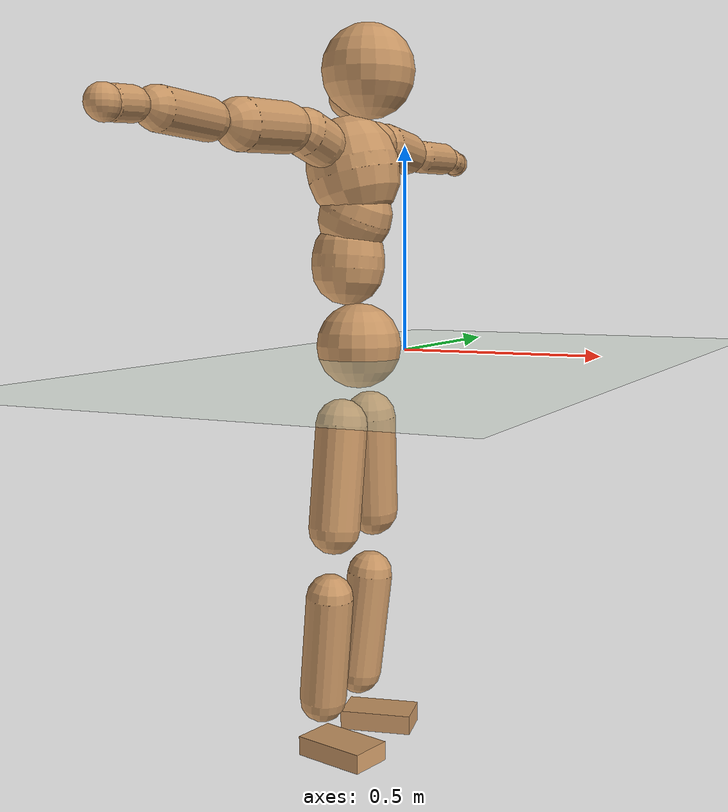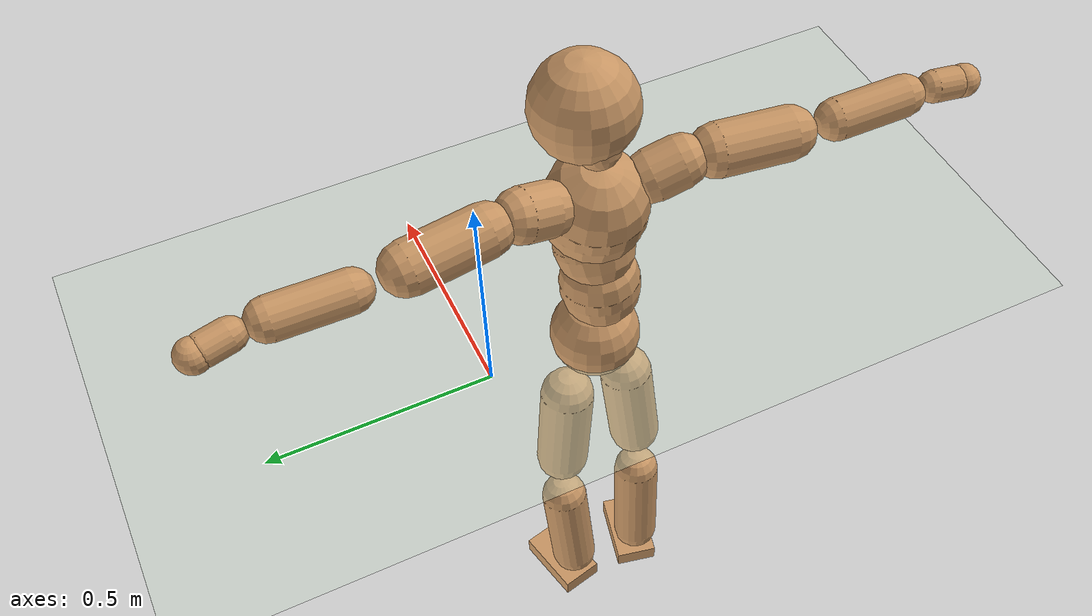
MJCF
<mujoco model="humanoid">
  <compiler coordinate="local"/>
  <default>
    <joint damping="0.0" armature="0.01" stiffness="0.0" limited="true"/>
    <geom conaffinity="1" condim="3" contype="7" margin="0.001" rgba="0.8 0.6 .4 1"/>
  </default>
  <asset>
    <texture type="skybox" builtin="gradient" rgb1=".4 .5 .6" rgb2="0 0 0" width="100" height="100"/>
    <texture builtin="flat" height="1278" mark="cross" markrgb="1 1 1" name="texgeom" random="0.01" rgb1="0.8 0.6 0.4" rgb2="0.8 0.6 0.4" type="cube" width="127"/>
    <texture builtin="checker" height="100" name="texplane" rgb1="0 0 0" rgb2="0.8 0.8 0.8" type="2d" width="100"/>
    <material name="MatPlane" reflectance="0.5" shininess="1" specular="1" texrepeat="60 60" texture="texplane"/>
    <material name="geom" texture="texgeom" texuniform="true"/>
  </asset>
  <worldbody>
    <light cutoff="100" diffuse="1 1 1" dir="-0 0 -1.3" directional="true" exponent="1" pos="0 0 1.3" specular=".1 .1 .1"/>
    <geom conaffinity="1" condim="3" name="floor" pos="0 0 0" rgba="0.8 0.9 0.8 1" size="100 100 .2" type="plane" material="MatPlane"/>
    <body name="Pelvis" pos="-0.0037 -0.2437 0.0269">
      <freejoint name="Pelvis"/>
      <geom type="sphere" contype="1" conaffinity="1" density="500" size="0.0985" pos="0.0000 0.0000 0.0000" name="Pelvis"/>
      <body name="L_Hip" pos="-0.0074 0.0671 -0.097">
        <joint name="L_Hip_x" type="hinge" pos="0 0 0" axis="1 0 0" stiffness="800" damping="80" armature="0.02" range="-180.0000 180.0000"/>
        <joint name="L_Hip_y" type="hinge" pos="0 0 0" axis="0 1 0" stiffness="800" damping="80" armature="0.02" range="-180.0000 180.0000"/>
        <joint name="L_Hip_z" type="hinge" pos="0 0 0" axis="0 0 1" stiffness="800" damping="80" armature="0.02" range="-180.0000 180.0000"/>
        <geom type="capsule" contype="1" conaffinity="1" density="500" fromto="-0.0014 0.0070 -0.0772 -0.0057 0.0278 -0.3089" size="0.0605" name="L_Hip"/>
        <body name="L_Knee" pos="-0.0071 0.0348 -0.3861">
          <joint name="L_Knee_x" type="hinge" pos="0 0 0" axis="1 0 0" stiffness="800" damping="80" armature="0.02" range="-180.0000 180.0000"/>
          <joint name="L_Knee_y" type="hinge" pos="0 0 0" axis="0 1 0" stiffness="800" damping="80" armature="0.02" range="-180.0000 180.0000"/>
          <joint name="L_Knee_z" type="hinge" pos="0 0 0" axis="0 0 1" stiffness="800" damping="80" armature="0.02" range="-180.0000 180.0000"/>
          <geom type="capsule" contype="1" conaffinity="1" density="500" fromto="-0.0089 -0.0031 -0.0827 -0.0357 -0.0125 -0.3306" size="0.0549" name="L_Knee"/>
          <body name="L_Ankle" pos="-0.0447 -0.0156 -0.4133">
            <joint name="L_Ankle_x" type="hinge" pos="0 0 0" axis="1 0 0" stiffness="800" damping="80" armature="0.02" range="-180.0000 180.0000"/>
            <joint name="L_Ankle_y" type="hinge" pos="0 0 0" axis="0 1 0" stiffness="800" damping="80" armature="0.02" range="-180.0000 180.0000"/>
            <joint name="L_Ankle_z" type="hinge" pos="0 0 0" axis="0 0 1" stiffness="800" damping="80" armature="0.02" range="-180.0000 180.0000"/>
            <geom type="box" contype="1" conaffinity="1" density="500" pos="0.0612 0.0138 -0.0285" size="0.0859 0.0502 0.0225" quat="0.9939 0.0000 0.0000 0.1105" name="L_Ankle"/>
            <body name="L_Toe" pos="0.1225 0.0276 -0.057">
              <joint name="L_Toe_x" type="hinge" pos="0 0 0" axis="1 0 0" stiffness="500" damping="50" armature="0.02" range="-180.0000 180.0000"/>
              <joint name="L_Toe_y" type="hinge" pos="0 0 0" axis="0 1 0" stiffness="500" damping="50" armature="0.02" range="-180.0000 180.0000"/>
              <joint name="L_Toe_z" type="hinge" pos="0 0 0" axis="0 0 1" stiffness="500" damping="50" armature="0.02" range="-180.0000 180.0000"/>
              <geom type="box" contype="1" conaffinity="1" density="500" pos="0.0000 0.0000 0.0280" size="0.001 0.0025 0.0011" quat="0.9932 0.0000 0.0000 0.1164" name="L_Toe"/>
            </body>
          </body>
        </body>
      </body>
      <body name="R_Hip" pos="-0.0044 -0.066 -0.0966">
        <joint name="R_Hip_x" type="hinge" pos="0 0 0" axis="1 0 0" stiffness="800" damping="80" armature="0.02" range="-180.0000 180.0000"/>
        <joint name="R_Hip_y" type="hinge" pos="0 0 0" axis="0 1 0" stiffness="800" damping="80" armature="0.02" range="-180.0000 180.0000"/>
        <joint name="R_Hip_z" type="hinge" pos="0 0 0" axis="0 0 1" stiffness="800" damping="80" armature="0.02" range="-180.0000 180.0000"/>
        <geom type="capsule" contype="1" conaffinity="1" density="500" fromto="-0.0025 -0.0078 -0.0791 -0.0102 -0.0311 -0.3164" size="0.0595" name="R_Hip"/>
        <body name="R_Knee" pos="-0.0127 -0.0388 -0.3955">
          <joint name="R_Knee_x" type="hinge" pos="0 0 0" axis="1 0 0" stiffness="800" damping="80" armature="0.02" range="-180.0000 180.0000"/>
          <joint name="R_Knee_y" type="hinge" pos="0 0 0" axis="0 1 0" stiffness="800" damping="80" armature="0.02" range="-180.0000 180.0000"/>
          <joint name="R_Knee_z" type="hinge" pos="0 0 0" axis="0 0 1" stiffness="800" damping="80" armature="0.02" range="-180.0000 180.0000"/>
          <geom type="capsule" contype="1" conaffinity="1" density="500" fromto="-0.0086 0.0036 -0.0830 -0.0343 0.0143 -0.3318" size="0.0546" name="R_Knee"/>
          <body name="R_Ankle" pos="-0.0428 0.0179 -0.4148">
            <joint name="R_Ankle_x" type="hinge" pos="0 0 0" axis="1 0 0" stiffness="800" damping="80" armature="0.02" range="-180.0000 180.0000"/>
            <joint name="R_Ankle_y" type="hinge" pos="0 0 0" axis="0 1 0" stiffness="800" damping="80" armature="0.02" range="-180.0000 180.0000"/>
            <joint name="R_Ankle_z" type="hinge" pos="0 0 0" axis="0 0 1" stiffness="800" damping="80" armature="0.02" range="-180.0000 180.0000"/>
            <geom type="box" contype="1" conaffinity="1" density="500" pos="0.0635 -0.0142 -0.0249" size="0.0884 0.0505 0.0222" quat="0.9939 0.0000 0.0000 -0.1099" name="R_Ankle"/>
            <body name="R_Toe" pos="0.1269 -0.0284 -0.0499">
              <joint name="R_Toe_x" type="hinge" pos="0 0 0" axis="1 0 0" stiffness="500" damping="50" armature="0.02" range="-180.0000 180.0000"/>
              <joint name="R_Toe_y" type="hinge" pos="0 0 0" axis="0 1 0" stiffness="500" damping="50" armature="0.02" range="-180.0000 180.0000"/>
              <joint name="R_Toe_z" type="hinge" pos="0 0 0" axis="0 0 1" stiffness="500" damping="50" armature="0.02" range="-180.0000 180.0000"/>
              <geom type="box" contype="1" conaffinity="1" density="500" pos="0.0000 0.0000 0.0254" size="0.0011 0.0025 0.0011" quat="0.9949 0.0000 0.0000 -0.1009" name="R_Toe"/>
            </body>
          </body>
        </body>
      </body>
      <body name="Torso" pos="-0.0301 -0.0025 0.1179">
        <joint name="Torso_x" type="hinge" pos="0 0 0" axis="1 0 0" stiffness="1000" damping="100" armature="0.02" range="-180.0000 180.0000"/>
        <joint name="Torso_y" type="hinge" pos="0 0 0" axis="0 1 0" stiffness="1000" damping="100" armature="0.02" range="-180.0000 180.0000"/>
        <joint name="Torso_z" type="hinge" pos="0 0 0" axis="0 0 1" stiffness="1000" damping="100" armature="0.02" range="-180.0000 180.0000"/>
        <geom type="capsule" contype="1" conaffinity="1" density="500" fromto="0.0031 0.0048 0.0879 0.0021 0.0032 0.0586" size="0.084" name="Torso"/>
        <body name="Spine" pos="0.0052 0.0081 0.1465">
          <joint name="Spine_x" type="hinge" pos="0 0 0" axis="1 0 0" stiffness="1000" damping="100" armature="0.02" range="-180.0000 180.0000"/>
          <joint name="Spine_y" type="hinge" pos="0 0 0" axis="0 1 0" stiffness="1000" damping="100" armature="0.02" range="-180.0000 180.0000"/>
          <joint name="Spine_z" type="hinge" pos="0 0 0" axis="0 0 1" stiffness="1000" damping="100" armature="0.02" range="-180.0000 180.0000"/>
          <geom type="capsule" contype="1" conaffinity="1" density="500" fromto="0.0163 0.0006 0.0356 0.0109 0.0004 0.0237" size="0.0838" name="Spine"/>
          <body name="Chest" pos="0.0272 0.0011 0.0593">
            <joint name="Chest_x" type="hinge" pos="0 0 0" axis="1 0 0" stiffness="1000" damping="100" armature="0.02" range="-180.0000 180.0000"/>
            <joint name="Chest_y" type="hinge" pos="0 0 0" axis="0 1 0" stiffness="1000" damping="100" armature="0.02" range="-180.0000 180.0000"/>
            <joint name="Chest_z" type="hinge" pos="0 0 0" axis="0 0 1" stiffness="1000" damping="100" armature="0.02" range="-180.0000 180.0000"/>
            <geom type="capsule" contype="1" conaffinity="1" density="500" fromto="-0.0221 -0.0016 0.0948 -0.0147 -0.0011 0.0632" size="0.1059" name="Chest"/>
            <body name="Neck" pos="-0.0372 -0.0042 0.2233">
              <joint name="Neck_x" type="hinge" pos="0 0 0" axis="1 0 0" stiffness="500" damping="50" armature="0.02" range="-180.0000 180.0000"/>
              <joint name="Neck_y" type="hinge" pos="0 0 0" axis="0 1 0" stiffness="500" damping="50" armature="0.02" range="-180.0000 180.0000"/>
              <joint name="Neck_z" type="hinge" pos="0 0 0" axis="0 0 1" stiffness="500" damping="50" armature="0.02" range="-180.0000 180.0000"/>
              <geom type="capsule" contype="1" conaffinity="1" density="500" fromto="0.0115 0.0011 0.0144 0.0460 0.0044 0.0575" size="0.0473" name="Neck"/>
              <body name="Head" pos="0.0575 0.0055 0.0719">
                <joint name="Head_x" type="hinge" pos="0 0 0" axis="1 0 0" stiffness="500" damping="50" armature="0.02" range="-180.0000 180.0000"/>
                <joint name="Head_y" type="hinge" pos="0 0 0" axis="0 1 0" stiffness="500" damping="50" armature="0.02" range="-180.0000 180.0000"/>
                <joint name="Head_z" type="hinge" pos="0 0 0" axis="0 0 1" stiffness="500" damping="50" armature="0.02" range="-180.0000 180.0000"/>
                <geom type="sphere" contype="1" conaffinity="1" density="500" size="0.1068" pos="0.0000 0.0000 0.0000" name="Head"/>
              </body>
            </body>
            <body name="L_Thorax" pos="-0.0348 0.085 0.1271">
              <joint name="L_Thorax_x" type="hinge" pos="0 0 0" axis="1 0 0" stiffness="500" damping="50" armature="0.02" range="-180.0000 180.0000"/>
              <joint name="L_Thorax_y" type="hinge" pos="0 0 0" axis="0 1 0" stiffness="500" damping="50" armature="0.02" range="-180.0000 180.0000"/>
              <joint name="L_Thorax_z" type="hinge" pos="0 0 0" axis="0 0 1" stiffness="500" damping="50" armature="0.02" range="-180.0000 180.0000"/>
              <geom type="capsule" contype="1" conaffinity="1" density="500" fromto="-0.0026 0.0192 0.0054 -0.0106 0.0767 0.0217" size="0.0551" name="L_Thorax"/>
              <body name="L_Shoulder" pos="-0.0132 0.0959 0.0271">
                <joint name="L_Shoulder_x" type="hinge" pos="0 0 0" axis="1 0 0" stiffness="500" damping="50" armature="0.02" range="-720.0000 720.0000"/>
                <joint name="L_Shoulder_y" type="hinge" pos="0 0 0" axis="0 1 0" stiffness="500" damping="50" armature="0.02" range="-720.0000 720.0000"/>
                <joint name="L_Shoulder_z" type="hinge" pos="0 0 0" axis="0 0 1" stiffness="500" damping="50" armature="0.02" range="-720.0000 720.0000"/>
                <geom type="capsule" contype="1" conaffinity="1" density="500" fromto="-0.0056 0.0535 -0.0022 -0.0224 0.2141 -0.0090" size="0.0537" name="L_Shoulder"/>
                <body name="L_Elbow" pos="-0.028 0.2677 -0.0112">
                  <joint name="L_Elbow_x" type="hinge" pos="0 0 0" axis="1 0 0" stiffness="500" damping="50" armature="0.02" range="-720.0000 720.0000"/>
                  <joint name="L_Elbow_y" type="hinge" pos="0 0 0" axis="0 1 0" stiffness="500" damping="50" armature="0.02" range="-720.0000 720.0000"/>
                  <joint name="L_Elbow_z" type="hinge" pos="0 0 0" axis="0 0 1" stiffness="500" damping="50" armature="0.02" range="-720.0000 720.0000"/>
                  <geom type="capsule" contype="1" conaffinity="1" density="500" fromto="-0.0006 0.0503 0.0017 -0.0024 0.2013 0.0067" size="0.0425" name="L_Elbow"/>
                  <body name="L_Wrist" pos="-0.003 0.2516 0.0084">
                    <joint name="L_Wrist_x" type="hinge" pos="0 0 0" axis="1 0 0" stiffness="300" damping="30" armature="0.02" range="-180.0000 180.0000"/>
                    <joint name="L_Wrist_y" type="hinge" pos="0 0 0" axis="0 1 0" stiffness="300" damping="30" armature="0.02" range="-180.0000 180.0000"/>
                    <joint name="L_Wrist_z" type="hinge" pos="0 0 0" axis="0 0 1" stiffness="300" damping="30" armature="0.02" range="-180.0000 180.0000"/>
                    <geom type="capsule" contype="1" conaffinity="1" density="500" fromto="-0.0032 0.0171 -0.0013 -0.0127 0.0684 -0.0052" size="0.0328" name="L_Wrist"/>
                    <body name="L_Hand" pos="-0.0159 0.0855 -0.0066">
                      <joint name="L_Hand_x" type="hinge" pos="0 0 0" axis="1 0 0" stiffness="300" damping="30" armature="0.02" range="-180.0000 180.0000"/>
                      <joint name="L_Hand_y" type="hinge" pos="0 0 0" axis="0 1 0" stiffness="300" damping="30" armature="0.02" range="-180.0000 180.0000"/>
                      <joint name="L_Hand_z" type="hinge" pos="0 0 0" axis="0 0 1" stiffness="300" damping="30" armature="0.02" range="-180.0000 180.0000"/>
                      <geom type="sphere" contype="1" conaffinity="1" density="500" size="0.0342" pos="0.0000 0.0000 0.0000" name="L_Hand"/>
                    </body>
                  </body>
                </body>
              </body>
            </body>
            <body name="R_Thorax" pos="-0.0384 -0.0886 0.1237">
              <joint name="R_Thorax_x" type="hinge" pos="0 0 0" axis="1 0 0" stiffness="500" damping="50" armature="0.02" range="-180.0000 180.0000"/>
              <joint name="R_Thorax_y" type="hinge" pos="0 0 0" axis="0 1 0" stiffness="500" damping="50" armature="0.02" range="-180.0000 180.0000"/>
              <joint name="R_Thorax_z" type="hinge" pos="0 0 0" axis="0 0 1" stiffness="500" damping="50" armature="0.02" range="-180.0000 180.0000"/>
              <geom type="capsule" contype="1" conaffinity="1" density="500" fromto="-0.0021 -0.0201 0.0059 -0.0085 -0.0805 0.0237" size="0.054" name="R_Thorax"/>
              <body name="R_Shoulder" pos="-0.0106 -0.1007 0.0296">
                <joint name="R_Shoulder_x" type="hinge" pos="0 0 0" axis="1 0 0" stiffness="500" damping="50" armature="0.02" range="-720.0000 720.0000"/>
                <joint name="R_Shoulder_y" type="hinge" pos="0 0 0" axis="0 1 0" stiffness="500" damping="50" armature="0.02" range="-720.0000 720.0000"/>
                <joint name="R_Shoulder_z" type="hinge" pos="0 0 0" axis="0 0 1" stiffness="500" damping="50" armature="0.02" range="-720.0000 720.0000"/>
                <geom type="capsule" contype="1" conaffinity="1" density="500" fromto="-0.0047 -0.0512 -0.0022 -0.0187 -0.2050 -0.0089" size="0.0552" name="R_Shoulder"/>
                <body name="R_Elbow" pos="-0.0234 -0.2562 -0.0111">
                  <joint name="R_Elbow_x" type="hinge" pos="0 0 0" axis="1 0 0" stiffness="500" damping="50" armature="0.02" range="-720.0000 720.0000"/>
                  <joint name="R_Elbow_y" type="hinge" pos="0 0 0" axis="0 1 0" stiffness="500" damping="50" armature="0.02" range="-720.0000 720.0000"/>
                  <joint name="R_Elbow_z" type="hinge" pos="0 0 0" axis="0 0 1" stiffness="500" damping="50" armature="0.02" range="-720.0000 720.0000"/>
                  <geom type="capsule" contype="1" conaffinity="1" density="500" fromto="-0.0016 -0.0514 0.0016 -0.0062 -0.2057 0.0063" size="0.0433" name="R_Elbow"/>
                  <body name="R_Wrist" pos="-0.0078 -0.2571 0.0078">
                    <joint name="R_Wrist_x" type="hinge" pos="0 0 0" axis="1 0 0" stiffness="300" damping="30" armature="0.02" range="-180.0000 180.0000"/>
                    <joint name="R_Wrist_y" type="hinge" pos="0 0 0" axis="0 1 0" stiffness="300" damping="30" armature="0.02" range="-180.0000 180.0000"/>
                    <joint name="R_Wrist_z" type="hinge" pos="0 0 0" axis="0 0 1" stiffness="300" damping="30" armature="0.02" range="-180.0000 180.0000"/>
                    <geom type="capsule" contype="1" conaffinity="1" density="500" fromto="-0.0020 -0.0170 -0.0010 -0.0079 -0.0682 -0.0040" size="0.0334" name="R_Wrist"/>
                    <body name="R_Hand" pos="-0.0098 -0.0852 -0.005">
                      <joint name="R_Hand_x" type="hinge" pos="0 0 0" axis="1 0 0" stiffness="300" damping="30" armature="0.02" range="-180.0000 180.0000"/>
                      <joint name="R_Hand_y" type="hinge" pos="0 0 0" axis="0 1 0" stiffness="300" damping="30" armature="0.02" range="-180.0000 180.0000"/>
                      <joint name="R_Hand_z" type="hinge" pos="0 0 0" axis="0 0 1" stiffness="300" damping="30" armature="0.02" range="-180.0000 180.0000"/>
                      <geom type="sphere" contype="1" conaffinity="1" density="500" size="0.0344" pos="0.0000 0.0000 0.0000" name="R_Hand"/>
                    </body>
                  </body>
                </body>
              </body>
            </body>
          </body>
        </body>
      </body>
    </body>
  </worldbody>
  <actuator>
    <motor name="L_Hip_x" joint="L_Hip_x" gear="500"/>
    <motor name="L_Hip_y" joint="L_Hip_y" gear="500"/>
    <motor name="L_Hip_z" joint="L_Hip_z" gear="500"/>
    <motor name="L_Knee_x" joint="L_Knee_x" gear="500"/>
    <motor name="L_Knee_y" joint="L_Knee_y" gear="500"/>
    <motor name="L_Knee_z" joint="L_Knee_z" gear="500"/>
    <motor name="L_Ankle_x" joint="L_Ankle_x" gear="500"/>
    <motor name="L_Ankle_y" joint="L_Ankle_y" gear="500"/>
    <motor name="L_Ankle_z" joint="L_Ankle_z" gear="500"/>
    <motor name="L_Toe_x" joint="L_Toe_x" gear="500"/>
    <motor name="L_Toe_y" joint="L_Toe_y" gear="500"/>
    <motor name="L_Toe_z" joint="L_Toe_z" gear="500"/>
    <motor name="R_Hip_x" joint="R_Hip_x" gear="500"/>
    <motor name="R_Hip_y" joint="R_Hip_y" gear="500"/>
    <motor name="R_Hip_z" joint="R_Hip_z" gear="500"/>
    <motor name="R_Knee_x" joint="R_Knee_x" gear="500"/>
    <motor name="R_Knee_y" joint="R_Knee_y" gear="500"/>
    <motor name="R_Knee_z" joint="R_Knee_z" gear="500"/>
    <motor name="R_Ankle_x" joint="R_Ankle_x" gear="500"/>
    <motor name="R_Ankle_y" joint="R_Ankle_y" gear="500"/>
    <motor name="R_Ankle_z" joint="R_Ankle_z" gear="500"/>
    <motor name="R_Toe_x" joint="R_Toe_x" gear="500"/>
    <motor name="R_Toe_y" joint="R_Toe_y" gear="500"/>
    <motor name="R_Toe_z" joint="R_Toe_z" gear="500"/>
    <motor name="Torso_x" joint="Torso_x" gear="500"/>
    <motor name="Torso_y" joint="Torso_y" gear="500"/>
    <motor name="Torso_z" joint="Torso_z" gear="500"/>
    <motor name="Spine_x" joint="Spine_x" gear="500"/>
    <motor name="Spine_y" joint="Spine_y" gear="500"/>
    <motor name="Spine_z" joint="Spine_z" gear="500"/>
    <motor name="Chest_x" joint="Chest_x" gear="500"/>
    <motor name="Chest_y" joint="Chest_y" gear="500"/>
    <motor name="Chest_z" joint="Chest_z" gear="500"/>
    <motor name="Neck_x" joint="Neck_x" gear="500"/>
    <motor name="Neck_y" joint="Neck_y" gear="500"/>
    <motor name="Neck_z" joint="Neck_z" gear="500"/>
    <motor name="Head_x" joint="Head_x" gear="500"/>
    <motor name="Head_y" joint="Head_y" gear="500"/>
    <motor name="Head_z" joint="Head_z" gear="500"/>
    <motor name="L_Thorax_x" joint="L_Thorax_x" gear="500"/>
    <motor name="L_Thorax_y" joint="L_Thorax_y" gear="500"/>
    <motor name="L_Thorax_z" joint="L_Thorax_z" gear="500"/>
    <motor name="L_Shoulder_x" joint="L_Shoulder_x" gear="500"/>
    <motor name="L_Shoulder_y" joint="L_Shoulder_y" gear="500"/>
    <motor name="L_Shoulder_z" joint="L_Shoulder_z" gear="500"/>
    <motor name="L_Elbow_x" joint="L_Elbow_x" gear="500"/>
    <motor name="L_Elbow_y" joint="L_Elbow_y" gear="500"/>
    <motor name="L_Elbow_z" joint="L_Elbow_z" gear="500"/>
    <motor name="L_Wrist_x" joint="L_Wrist_x" gear="500"/>
    <motor name="L_Wrist_y" joint="L_Wrist_y" gear="500"/>
    <motor name="L_Wrist_z" joint="L_Wrist_z" gear="500"/>
    <motor name="L_Hand_x" joint="L_Hand_x" gear="500"/>
    <motor name="L_Hand_y" joint="L_Hand_y" gear="500"/>
    <motor name="L_Hand_z" joint="L_Hand_z" gear="500"/>
    <motor name="R_Thorax_x" joint="R_Thorax_x" gear="500"/>
    <motor name="R_Thorax_y" joint="R_Thorax_y" gear="500"/>
    <motor name="R_Thorax_z" joint="R_Thorax_z" gear="500"/>
    <motor name="R_Shoulder_x" joint="R_Shoulder_x" gear="500"/>
    <motor name="R_Shoulder_y" joint="R_Shoulder_y" gear="500"/>
    <motor name="R_Shoulder_z" joint="R_Shoulder_z" gear="500"/>
    <motor name="R_Elbow_x" joint="R_Elbow_x" gear="500"/>
    <motor name="R_Elbow_y" joint="R_Elbow_y" gear="500"/>
    <motor name="R_Elbow_z" joint="R_Elbow_z" gear="500"/>
    <motor name="R_Wrist_x" joint="R_Wrist_x" gear="500"/>
    <motor name="R_Wrist_y" joint="R_Wrist_y" gear="500"/>
    <motor name="R_Wrist_z" joint="R_Wrist_z" gear="500"/>
    <motor name="R_Hand_x" joint="R_Hand_x" gear="500"/>
    <motor name="R_Hand_y" joint="R_Hand_y" gear="500"/>
    <motor name="R_Hand_z" joint="R_Hand_z" gear="500"/>
  </actuator>
  <contact>
    <exclude body1="Torso" body2="Chest"/>
    <exclude body1="Head" body2="Chest"/>
    <exclude body1="R_Knee" body2="R_Toe"/>
    <exclude body1="R_Knee" body2="L_Ankle"/>
    <exclude body1="R_Knee" body2="L_Toe"/>
    <exclude body1="L_Knee" body2="L_Toe"/>
    <exclude body1="L_Knee" body2="R_Ankle"/>
    <exclude body1="L_Knee" body2="R_Toe"/>
    <exclude body1="L_Shoulder" body2="Chest"/>
    <exclude body1="R_Shoulder" body2="Chest"/>
  </contact>
  <sensor/>
  <size njmax="700" nconmax="700"/>
</mujoco>
